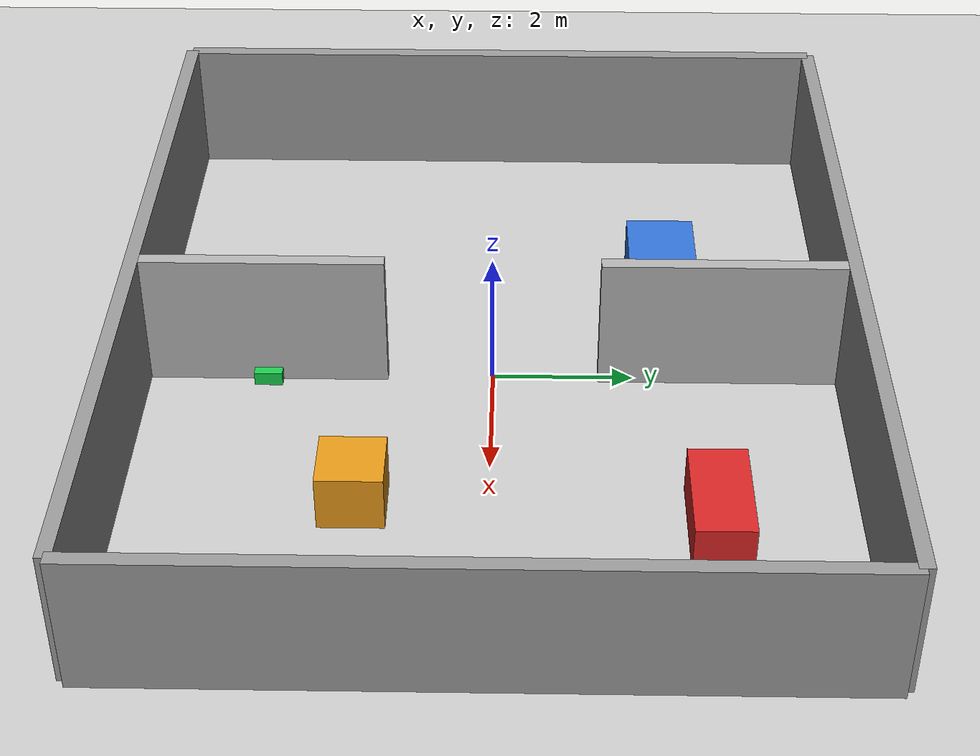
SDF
<?xml version="1.0" ?>
<sdf version="1.6">
  <world name="semantic_house">
    <!-- Deterministic physics parameters -->
    <physics type="ode">
      <max_step_size>0.001</max_step_size>
      <real_time_factor>1</real_time_factor>
      <real_time_update_rate>1000</real_time_update_rate>
    </physics>

    <!-- Ambient & Sun Lighting -->
    <include>
      <uri>model://sun</uri>
    </include>
    <include>
      <uri>model://ground_plane</uri>
    </include>

    <!-- ==================== OUTER BOUNDARY WALLS ==================== -->
    <!-- North Wall -->
    <model name="wall_outer_north">
      <static>true</static>
      <pose>0.0 5.0 1.0 0 0 0</pose>
      <link name="link">
        <collision name="col"><geometry><box><size>12.0 0.2 2.0</size></box></geometry></collision>
        <visual name="vis"><geometry><box><size>12.0 0.2 2.0</size></box></geometry><material><ambient>0.6 0.6 0.6 1</ambient></material></visual>
      </link>
    </model>
    <!-- South Wall -->
    <model name="wall_outer_south">
      <static>true</static>
      <pose>0.0 -5.0 1.0 0 0 0</pose>
      <link name="link">
        <collision name="col"><geometry><box><size>12.0 0.2 2.0</size></box></geometry></collision>
        <visual name="vis"><geometry><box><size>12.0 0.2 2.0</size></box></geometry><material><ambient>0.6 0.6 0.6 1</ambient></material></visual>
      </link>
    </model>
    <!-- East Wall -->
    <model name="wall_outer_east">
      <static>true</static>
      <pose>6.0 0.0 1.0 0 0 0</pose>
      <link name="link">
        <collision name="col"><geometry><box><size>0.2 10.0 2.0</size></box></geometry></collision>
        <visual name="vis"><geometry><box><size>0.2 10.0 2.0</size></box></geometry><material><ambient>0.6 0.6 0.6 1</ambient></material></visual>
      </link>
    </model>
    <!-- West Wall -->
    <model name="wall_outer_west">
      <static>true</static>
      <pose>-6.0 0.0 1.0 0 0 0</pose>
      <link name="link">
        <collision name="col"><geometry><box><size>0.2 10.0 2.0</size></box></geometry></collision>
        <visual name="vis"><geometry><box><size>0.2 10.0 2.0</size></box></geometry><material><ambient>0.6 0.6 0.6 1</ambient></material></visual>
      </link>
    </model>

    <!-- ==================== ROOM PARTITION WALLS ==================== -->
    <!-- Divider: Living Room (East) vs Kitchen (West) with Doorway -->
    <model name="wall_divider_north_1">
      <static>true</static>
      <pose>0.0 3.2 1.0 0 0 0</pose>
      <link name="link">
        <collision name="col"><geometry><box><size>0.2 3.4 2.0</size></box></geometry></collision>
        <visual name="vis"><geometry><box><size>0.2 3.4 2.0</size></box></geometry><material><ambient>0.7 0.7 0.7 1</ambient></material></visual>
      </link>
    </model>

    <!-- Divider: Storage Room vs Corridor with Doorway -->
    <model name="wall_divider_south_1">
      <static>true</static>
      <pose>0.0 -3.2 1.0 0 0 0</pose>
      <link name="link">
        <collision name="col"><geometry><box><size>0.2 3.4 2.0</size></box></geometry></collision>
        <visual name="vis"><geometry><box><size>0.2 3.4 2.0</size></box></geometry><material><ambient>0.7 0.7 0.7 1</ambient></material></visual>
      </link>
    </model>

    <!-- ==================== 3D SEMANTIC LANDMARK OBJECTS ==================== -->
    <!-- 1. Red Sofa (Living Room at x: 3.2, y: 3.0) -->
    <model name="semantic_red_sofa">
      <static>true</static>
      <pose>3.2 3.0 0.35 0 0 0</pose>
      <link name="link">
        <collision name="col">
          <geometry><box><size>1.6 0.8 0.7</size></box></geometry>
        </collision>
        <visual name="vis">
          <geometry><box><size>1.6 0.8 0.7</size></box></geometry>
          <material>
            <ambient>0.85 0.15 0.15 1</ambient>
            <diffuse>0.85 0.15 0.15 1</diffuse>
          </material>
        </visual>
      </link>
    </model>

    <!-- 2. Kitchen Table (Kitchen at x: -2.2, y: 2.5) -->
    <model name="semantic_kitchen_table">
      <static>true</static>
      <pose>-2.2 2.5 0.4 0 0 0</pose>
      <link name="link">
        <collision name="col">
          <geometry><box><size>1.4 1.0 0.8</size></box></geometry>
        </collision>
        <visual name="vis">
          <geometry><box><size>1.4 1.0 0.8</size></box></geometry>
          <material>
            <ambient>0.2 0.45 0.85 1</ambient>
            <diffuse>0.2 0.45 0.85 1</diffuse>
          </material>
        </visual>
      </link>
    </model>

    <!-- 3. Storage Cargo Boxes (Storage Bay at x: 2.8, y: -1.8) -->
    <model name="semantic_storage_boxes">
      <static>true</static>
      <pose>2.8 -1.8 0.4 0 0 0</pose>
      <link name="link">
        <collision name="col">
          <geometry><box><size>0.9 0.9 0.8</size></box></geometry>
        </collision>
        <visual name="vis">
          <geometry><box><size>0.9 0.9 0.8</size></box></geometry>
          <material>
            <ambient>0.9 0.6 0.1 1</ambient>
            <diffuse>0.9 0.6 0.1 1</diffuse>
          </material>
        </visual>
      </link>
    </model>

    <!-- 4. Charging Dock Target (Docking Bay at x: 0.0, y: -3.2) -->
    <model name="semantic_charging_dock">
      <static>true</static>
      <pose>0.0 -3.2 0.1 0 0 0</pose>
      <link name="link">
        <collision name="col">
          <geometry><box><size>0.5 0.4 0.2</size></box></geometry>
        </collision>
        <visual name="vis">
          <geometry><box><size>0.5 0.4 0.2</size></box></geometry>
          <material>
            <ambient>0.1 0.8 0.3 1</ambient>
            <diffuse>0.1 0.8 0.3 1</diffuse>
          </material>
        </visual>
      </link>
    </model>

  </world>
</sdf>
